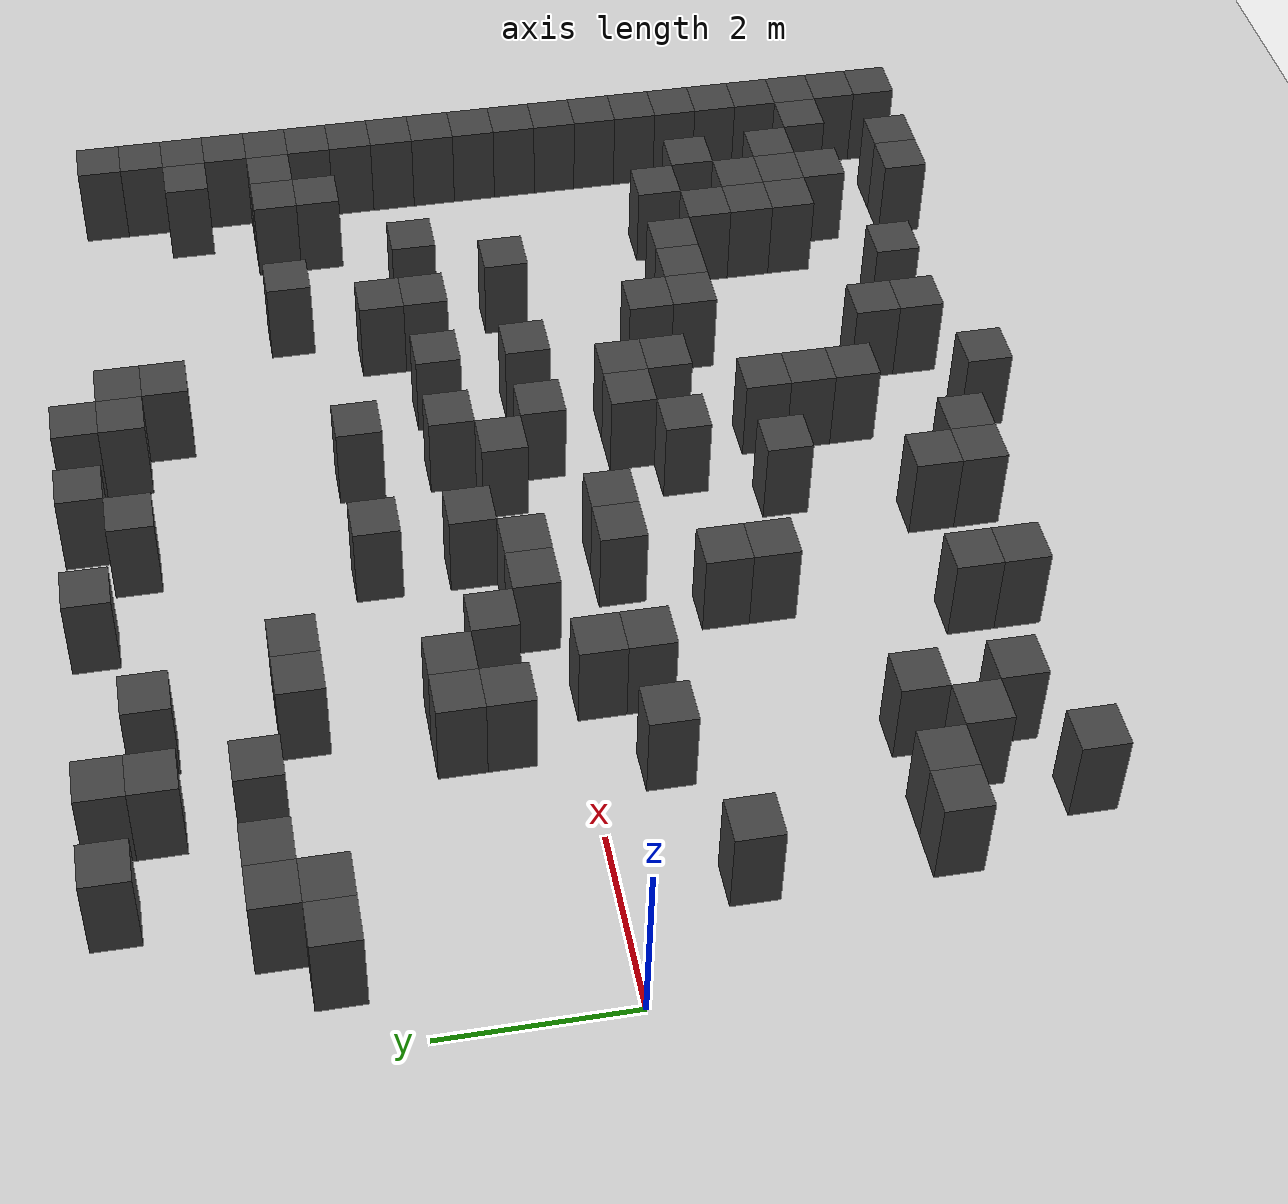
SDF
<sdf version="1.7">
 <world name="map_4009">
  <model name="ground_plane">
   <static>true</static>
   <link name="link">
    <collision name="collision">
     <geometry><plane><normal>0 0 1</normal><size>200 200</size></plane></geometry>
    </collision>
    <visual name="visual">
     <geometry><plane><normal>0 0 1</normal><size>200 200</size></plane></geometry>
     <material><ambient>0.8 0.8 0.8 1</ambient><diffuse>0.8 0.8 0.8 1</diffuse></material>
    </visual>
   </link>
  </model>
  <model name="maze_environment">
   <static>true</static>
   <link name="wall_213">
    <pose>1.750 4.750 0.500 0 0 0</pose>
    <collision name="col"><geometry><box><size>0.5 0.5 1.0</size></box></geometry></collision>
    <visual name="vis">
     <geometry><box><size>0.5 0.5 1.0</size></box></geometry>
     <material><ambient>0.15 0.15 0.15 1</ambient><diffuse>0.25 0.25 0.25 1</diffuse></material>
    </visual>
   </link>
   <link name="wall_214">
    <pose>2.750 4.750 0.500 0 0 0</pose>
    <collision name="col"><geometry><box><size>0.5 0.5 1.0</size></box></geometry></collision>
    <visual name="vis">
     <geometry><box><size>0.5 0.5 1.0</size></box></geometry>
     <material><ambient>0.15 0.15 0.15 1</ambient><diffuse>0.25 0.25 0.25 1</diffuse></material>
    </visual>
   </link>
   <link name="wall_215">
    <pose>5.250 4.750 0.500 0 0 0</pose>
    <collision name="col"><geometry><box><size>0.5 0.5 1.0</size></box></geometry></collision>
    <visual name="vis">
     <geometry><box><size>0.5 0.5 1.0</size></box></geometry>
     <material><ambient>0.15 0.15 0.15 1</ambient><diffuse>0.25 0.25 0.25 1</diffuse></material>
    </visual>
   </link>
   <link name="wall_216">
    <pose>6.750 4.750 0.500 0 0 0</pose>
    <collision name="col"><geometry><box><size>0.5 0.5 1.0</size></box></geometry></collision>
    <visual name="vis">
     <geometry><box><size>0.5 0.5 1.0</size></box></geometry>
     <material><ambient>0.15 0.15 0.15 1</ambient><diffuse>0.25 0.25 0.25 1</diffuse></material>
    </visual>
   </link>
   <link name="wall_217">
    <pose>7.750 4.750 0.500 0 0 0</pose>
    <collision name="col"><geometry><box><size>0.5 0.5 1.0</size></box></geometry></collision>
    <visual name="vis">
     <geometry><box><size>0.5 0.5 1.0</size></box></geometry>
     <material><ambient>0.15 0.15 0.15 1</ambient><diffuse>0.25 0.25 0.25 1</diffuse></material>
    </visual>
   </link>
   <link name="wall_230">
    <pose>2.750 4.250 0.500 0 0 0</pose>
    <collision name="col"><geometry><box><size>0.5 0.5 1.0</size></box></geometry></collision>
    <visual name="vis">
     <geometry><box><size>0.5 0.5 1.0</size></box></geometry>
     <material><ambient>0.15 0.15 0.15 1</ambient><diffuse>0.25 0.25 0.25 1</diffuse></material>
    </visual>
   </link>
   <link name="wall_231">
    <pose>3.750 4.250 0.500 0 0 0</pose>
    <collision name="col"><geometry><box><size>0.5 0.5 1.0</size></box></geometry></collision>
    <visual name="vis">
     <geometry><box><size>0.5 0.5 1.0</size></box></geometry>
     <material><ambient>0.15 0.15 0.15 1</ambient><diffuse>0.25 0.25 0.25 1</diffuse></material>
    </visual>
   </link>
   <link name="wall_232">
    <pose>6.250 4.250 0.500 0 0 0</pose>
    <collision name="col"><geometry><box><size>0.5 0.5 1.0</size></box></geometry></collision>
    <visual name="vis">
     <geometry><box><size>0.5 0.5 1.0</size></box></geometry>
     <material><ambient>0.15 0.15 0.15 1</ambient><diffuse>0.25 0.25 0.25 1</diffuse></material>
    </visual>
   </link>
   <link name="wall_233">
    <pose>7.750 4.250 0.500 0 0 0</pose>
    <collision name="col"><geometry><box><size>0.5 0.5 1.0</size></box></geometry></collision>
    <visual name="vis">
     <geometry><box><size>0.5 0.5 1.0</size></box></geometry>
     <material><ambient>0.15 0.15 0.15 1</ambient><diffuse>0.25 0.25 0.25 1</diffuse></material>
    </visual>
   </link>
   <link name="wall_234">
    <pose>8.250 4.250 0.500 0 0 0</pose>
    <collision name="col"><geometry><box><size>0.5 0.5 1.0</size></box></geometry></collision>
    <visual name="vis">
     <geometry><box><size>0.5 0.5 1.0</size></box></geometry>
     <material><ambient>0.15 0.15 0.15 1</ambient><diffuse>0.25 0.25 0.25 1</diffuse></material>
    </visual>
   </link>
   <link name="wall_235">
    <pose>12.250 4.250 0.500 0 0 0</pose>
    <collision name="col"><geometry><box><size>0.5 0.5 1.0</size></box></geometry></collision>
    <visual name="vis">
     <geometry><box><size>0.5 0.5 1.0</size></box></geometry>
     <material><ambient>0.15 0.15 0.15 1</ambient><diffuse>0.25 0.25 0.25 1</diffuse></material>
    </visual>
   </link>
   <link name="wall_243">
    <pose>8.250 3.750 0.500 0 0 0</pose>
    <collision name="col"><geometry><box><size>0.5 0.5 1.0</size></box></geometry></collision>
    <visual name="vis">
     <geometry><box><size>0.5 0.5 1.0</size></box></geometry>
     <material><ambient>0.15 0.15 0.15 1</ambient><diffuse>0.25 0.25 0.25 1</diffuse></material>
    </visual>
   </link>
   <link name="wall_244">
    <pose>12.250 3.750 0.500 0 0 0</pose>
    <collision name="col"><geometry><box><size>0.5 0.5 1.0</size></box></geometry></collision>
    <visual name="vis">
     <geometry><box><size>0.5 0.5 1.0</size></box></geometry>
     <material><ambient>0.15 0.15 0.15 1</ambient><diffuse>0.25 0.25 0.25 1</diffuse></material>
    </visual>
   </link>
   <link name="wall_253">
    <pose>1.250 3.250 0.500 0 0 0</pose>
    <collision name="col"><geometry><box><size>0.5 0.5 1.0</size></box></geometry></collision>
    <visual name="vis">
     <geometry><box><size>0.5 0.5 1.0</size></box></geometry>
     <material><ambient>0.15 0.15 0.15 1</ambient><diffuse>0.25 0.25 0.25 1</diffuse></material>
    </visual>
   </link>
   <link name="wall_254">
    <pose>1.750 3.250 0.500 0 0 0</pose>
    <collision name="col"><geometry><box><size>0.5 0.5 1.0</size></box></geometry></collision>
    <visual name="vis">
     <geometry><box><size>0.5 0.5 1.0</size></box></geometry>
     <material><ambient>0.15 0.15 0.15 1</ambient><diffuse>0.25 0.25 0.25 1</diffuse></material>
    </visual>
   </link>
   <link name="wall_255">
    <pose>2.750 3.250 0.500 0 0 0</pose>
    <collision name="col"><geometry><box><size>0.5 0.5 1.0</size></box></geometry></collision>
    <visual name="vis">
     <geometry><box><size>0.5 0.5 1.0</size></box></geometry>
     <material><ambient>0.15 0.15 0.15 1</ambient><diffuse>0.25 0.25 0.25 1</diffuse></material>
    </visual>
   </link>
   <link name="wall_256">
    <pose>11.750 3.250 0.500 0 0 0</pose>
    <collision name="col"><geometry><box><size>0.5 0.5 1.0</size></box></geometry></collision>
    <visual name="vis">
     <geometry><box><size>0.5 0.5 1.0</size></box></geometry>
     <material><ambient>0.15 0.15 0.15 1</ambient><diffuse>0.25 0.25 0.25 1</diffuse></material>
    </visual>
   </link>
   <link name="wall_257">
    <pose>12.250 3.250 0.500 0 0 0</pose>
    <collision name="col"><geometry><box><size>0.5 0.5 1.0</size></box></geometry></collision>
    <visual name="vis">
     <geometry><box><size>0.5 0.5 1.0</size></box></geometry>
     <material><ambient>0.15 0.15 0.15 1</ambient><diffuse>0.25 0.25 0.25 1</diffuse></material>
    </visual>
   </link>
   <link name="wall_266">
    <pose>0.750 2.750 0.500 0 0 0</pose>
    <collision name="col"><geometry><box><size>0.5 0.5 1.0</size></box></geometry></collision>
    <visual name="vis">
     <geometry><box><size>0.5 0.5 1.0</size></box></geometry>
     <material><ambient>0.15 0.15 0.15 1</ambient><diffuse>0.25 0.25 0.25 1</diffuse></material>
    </visual>
   </link>
   <link name="wall_267">
    <pose>1.250 2.750 0.500 0 0 0</pose>
    <collision name="col"><geometry><box><size>0.5 0.5 1.0</size></box></geometry></collision>
    <visual name="vis">
     <geometry><box><size>0.5 0.5 1.0</size></box></geometry>
     <material><ambient>0.15 0.15 0.15 1</ambient><diffuse>0.25 0.25 0.25 1</diffuse></material>
    </visual>
   </link>
   <link name="wall_268">
    <pose>3.750 2.750 0.500 0 0 0</pose>
    <collision name="col"><geometry><box><size>0.5 0.5 1.0</size></box></geometry></collision>
    <visual name="vis">
     <geometry><box><size>0.5 0.5 1.0</size></box></geometry>
     <material><ambient>0.15 0.15 0.15 1</ambient><diffuse>0.25 0.25 0.25 1</diffuse></material>
    </visual>
   </link>
   <link name="wall_269">
    <pose>4.250 2.750 0.500 0 0 0</pose>
    <collision name="col"><geometry><box><size>0.5 0.5 1.0</size></box></geometry></collision>
    <visual name="vis">
     <geometry><box><size>0.5 0.5 1.0</size></box></geometry>
     <material><ambient>0.15 0.15 0.15 1</ambient><diffuse>0.25 0.25 0.25 1</diffuse></material>
    </visual>
   </link>
   <link name="wall_270">
    <pose>12.250 2.750 0.500 0 0 0</pose>
    <collision name="col"><geometry><box><size>0.5 0.5 1.0</size></box></geometry></collision>
    <visual name="vis">
     <geometry><box><size>0.5 0.5 1.0</size></box></geometry>
     <material><ambient>0.15 0.15 0.15 1</ambient><diffuse>0.25 0.25 0.25 1</diffuse></material>
    </visual>
   </link>
   <link name="wall_277">
    <pose>9.750 2.250 0.500 0 0 0</pose>
    <collision name="col"><geometry><box><size>0.5 0.5 1.0</size></box></geometry></collision>
    <visual name="vis">
     <geometry><box><size>0.5 0.5 1.0</size></box></geometry>
     <material><ambient>0.15 0.15 0.15 1</ambient><diffuse>0.25 0.25 0.25 1</diffuse></material>
    </visual>
   </link>
   <link name="wall_278">
    <pose>11.250 2.250 0.500 0 0 0</pose>
    <collision name="col"><geometry><box><size>0.5 0.5 1.0</size></box></geometry></collision>
    <visual name="vis">
     <geometry><box><size>0.5 0.5 1.0</size></box></geometry>
     <material><ambient>0.15 0.15 0.15 1</ambient><diffuse>0.25 0.25 0.25 1</diffuse></material>
    </visual>
   </link>
   <link name="wall_279">
    <pose>11.750 2.250 0.500 0 0 0</pose>
    <collision name="col"><geometry><box><size>0.5 0.5 1.0</size></box></geometry></collision>
    <visual name="vis">
     <geometry><box><size>0.5 0.5 1.0</size></box></geometry>
     <material><ambient>0.15 0.15 0.15 1</ambient><diffuse>0.25 0.25 0.25 1</diffuse></material>
    </visual>
   </link>
   <link name="wall_280">
    <pose>12.250 2.250 0.500 0 0 0</pose>
    <collision name="col"><geometry><box><size>0.5 0.5 1.0</size></box></geometry></collision>
    <visual name="vis">
     <geometry><box><size>0.5 0.5 1.0</size></box></geometry>
     <material><ambient>0.15 0.15 0.15 1</ambient><diffuse>0.25 0.25 0.25 1</diffuse></material>
    </visual>
   </link>
   <link name="wall_286">
    <pose>5.750 1.750 0.500 0 0 0</pose>
    <collision name="col"><geometry><box><size>0.5 0.5 1.0</size></box></geometry></collision>
    <visual name="vis">
     <geometry><box><size>0.5 0.5 1.0</size></box></geometry>
     <material><ambient>0.15 0.15 0.15 1</ambient><diffuse>0.25 0.25 0.25 1</diffuse></material>
    </visual>
   </link>
   <link name="wall_287">
    <pose>7.250 1.750 0.500 0 0 0</pose>
    <collision name="col"><geometry><box><size>0.5 0.5 1.0</size></box></geometry></collision>
    <visual name="vis">
     <geometry><box><size>0.5 0.5 1.0</size></box></geometry>
     <material><ambient>0.15 0.15 0.15 1</ambient><diffuse>0.25 0.25 0.25 1</diffuse></material>
    </visual>
   </link>
   <link name="wall_288">
    <pose>11.250 1.750 0.500 0 0 0</pose>
    <collision name="col"><geometry><box><size>0.5 0.5 1.0</size></box></geometry></collision>
    <visual name="vis">
     <geometry><box><size>0.5 0.5 1.0</size></box></geometry>
     <material><ambient>0.15 0.15 0.15 1</ambient><diffuse>0.25 0.25 0.25 1</diffuse></material>
    </visual>
   </link>
   <link name="wall_289">
    <pose>12.250 1.750 0.500 0 0 0</pose>
    <collision name="col"><geometry><box><size>0.5 0.5 1.0</size></box></geometry></collision>
    <visual name="vis">
     <geometry><box><size>0.5 0.5 1.0</size></box></geometry>
     <material><ambient>0.15 0.15 0.15 1</ambient><diffuse>0.25 0.25 0.25 1</diffuse></material>
    </visual>
   </link>
   <link name="wall_295">
    <pose>3.250 1.250 0.500 0 0 0</pose>
    <collision name="col"><geometry><box><size>0.5 0.5 1.0</size></box></geometry></collision>
    <visual name="vis">
     <geometry><box><size>0.5 0.5 1.0</size></box></geometry>
     <material><ambient>0.15 0.15 0.15 1</ambient><diffuse>0.25 0.25 0.25 1</diffuse></material>
    </visual>
   </link>
   <link name="wall_296">
    <pose>3.750 1.250 0.500 0 0 0</pose>
    <collision name="col"><geometry><box><size>0.5 0.5 1.0</size></box></geometry></collision>
    <visual name="vis">
     <geometry><box><size>0.5 0.5 1.0</size></box></geometry>
     <material><ambient>0.15 0.15 0.15 1</ambient><diffuse>0.25 0.25 0.25 1</diffuse></material>
    </visual>
   </link>
   <link name="wall_297">
    <pose>9.250 1.250 0.500 0 0 0</pose>
    <collision name="col"><geometry><box><size>0.5 0.5 1.0</size></box></geometry></collision>
    <visual name="vis">
     <geometry><box><size>0.5 0.5 1.0</size></box></geometry>
     <material><ambient>0.15 0.15 0.15 1</ambient><diffuse>0.25 0.25 0.25 1</diffuse></material>
    </visual>
   </link>
   <link name="wall_298">
    <pose>12.250 1.250 0.500 0 0 0</pose>
    <collision name="col"><geometry><box><size>0.5 0.5 1.0</size></box></geometry></collision>
    <visual name="vis">
     <geometry><box><size>0.5 0.5 1.0</size></box></geometry>
     <material><ambient>0.15 0.15 0.15 1</ambient><diffuse>0.25 0.25 0.25 1</diffuse></material>
    </visual>
   </link>
   <link name="wall_306">
    <pose>3.250 0.750 0.500 0 0 0</pose>
    <collision name="col"><geometry><box><size>0.5 0.5 1.0</size></box></geometry></collision>
    <visual name="vis">
     <geometry><box><size>0.5 0.5 1.0</size></box></geometry>
     <material><ambient>0.15 0.15 0.15 1</ambient><diffuse>0.25 0.25 0.25 1</diffuse></material>
    </visual>
   </link>
   <link name="wall_307">
    <pose>4.250 0.750 0.500 0 0 0</pose>
    <collision name="col"><geometry><box><size>0.5 0.5 1.0</size></box></geometry></collision>
    <visual name="vis">
     <geometry><box><size>0.5 0.5 1.0</size></box></geometry>
     <material><ambient>0.15 0.15 0.15 1</ambient><diffuse>0.25 0.25 0.25 1</diffuse></material>
    </visual>
   </link>
   <link name="wall_308">
    <pose>5.750 0.750 0.500 0 0 0</pose>
    <collision name="col"><geometry><box><size>0.5 0.5 1.0</size></box></geometry></collision>
    <visual name="vis">
     <geometry><box><size>0.5 0.5 1.0</size></box></geometry>
     <material><ambient>0.15 0.15 0.15 1</ambient><diffuse>0.25 0.25 0.25 1</diffuse></material>
    </visual>
   </link>
   <link name="wall_309">
    <pose>7.250 0.750 0.500 0 0 0</pose>
    <collision name="col"><geometry><box><size>0.5 0.5 1.0</size></box></geometry></collision>
    <visual name="vis">
     <geometry><box><size>0.5 0.5 1.0</size></box></geometry>
     <material><ambient>0.15 0.15 0.15 1</ambient><diffuse>0.25 0.25 0.25 1</diffuse></material>
    </visual>
   </link>
   <link name="wall_310">
    <pose>8.250 0.750 0.500 0 0 0</pose>
    <collision name="col"><geometry><box><size>0.5 0.5 1.0</size></box></geometry></collision>
    <visual name="vis">
     <geometry><box><size>0.5 0.5 1.0</size></box></geometry>
     <material><ambient>0.15 0.15 0.15 1</ambient><diffuse>0.25 0.25 0.25 1</diffuse></material>
    </visual>
   </link>
   <link name="wall_311">
    <pose>9.250 0.750 0.500 0 0 0</pose>
    <collision name="col"><geometry><box><size>0.5 0.5 1.0</size></box></geometry></collision>
    <visual name="vis">
     <geometry><box><size>0.5 0.5 1.0</size></box></geometry>
     <material><ambient>0.15 0.15 0.15 1</ambient><diffuse>0.25 0.25 0.25 1</diffuse></material>
    </visual>
   </link>
   <link name="wall_312">
    <pose>10.250 0.750 0.500 0 0 0</pose>
    <collision name="col"><geometry><box><size>0.5 0.5 1.0</size></box></geometry></collision>
    <visual name="vis">
     <geometry><box><size>0.5 0.5 1.0</size></box></geometry>
     <material><ambient>0.15 0.15 0.15 1</ambient><diffuse>0.25 0.25 0.25 1</diffuse></material>
    </visual>
   </link>
   <link name="wall_313">
    <pose>12.250 0.750 0.500 0 0 0</pose>
    <collision name="col"><geometry><box><size>0.5 0.5 1.0</size></box></geometry></collision>
    <visual name="vis">
     <geometry><box><size>0.5 0.5 1.0</size></box></geometry>
     <material><ambient>0.15 0.15 0.15 1</ambient><diffuse>0.25 0.25 0.25 1</diffuse></material>
    </visual>
   </link>
   <link name="wall_318">
    <pose>4.750 0.250 0.500 0 0 0</pose>
    <collision name="col"><geometry><box><size>0.5 0.5 1.0</size></box></geometry></collision>
    <visual name="vis">
     <geometry><box><size>0.5 0.5 1.0</size></box></geometry>
     <material><ambient>0.15 0.15 0.15 1</ambient><diffuse>0.25 0.25 0.25 1</diffuse></material>
    </visual>
   </link>
   <link name="wall_319">
    <pose>5.250 0.250 0.500 0 0 0</pose>
    <collision name="col"><geometry><box><size>0.5 0.5 1.0</size></box></geometry></collision>
    <visual name="vis">
     <geometry><box><size>0.5 0.5 1.0</size></box></geometry>
     <material><ambient>0.15 0.15 0.15 1</ambient><diffuse>0.25 0.25 0.25 1</diffuse></material>
    </visual>
   </link>
   <link name="wall_320">
    <pose>6.750 0.250 0.500 0 0 0</pose>
    <collision name="col"><geometry><box><size>0.5 0.5 1.0</size></box></geometry></collision>
    <visual name="vis">
     <geometry><box><size>0.5 0.5 1.0</size></box></geometry>
     <material><ambient>0.15 0.15 0.15 1</ambient><diffuse>0.25 0.25 0.25 1</diffuse></material>
    </visual>
   </link>
   <link name="wall_321">
    <pose>12.250 0.250 0.500 0 0 0</pose>
    <collision name="col"><geometry><box><size>0.5 0.5 1.0</size></box></geometry></collision>
    <visual name="vis">
     <geometry><box><size>0.5 0.5 1.0</size></box></geometry>
     <material><ambient>0.15 0.15 0.15 1</ambient><diffuse>0.25 0.25 0.25 1</diffuse></material>
    </visual>
   </link>
   <link name="wall_326">
    <pose>3.750 -0.250 0.500 0 0 0</pose>
    <collision name="col"><geometry><box><size>0.5 0.5 1.0</size></box></geometry></collision>
    <visual name="vis">
     <geometry><box><size>0.5 0.5 1.0</size></box></geometry>
     <material><ambient>0.15 0.15 0.15 1</ambient><diffuse>0.25 0.25 0.25 1</diffuse></material>
    </visual>
   </link>
   <link name="wall_327">
    <pose>7.250 -0.250 0.500 0 0 0</pose>
    <collision name="col"><geometry><box><size>0.5 0.5 1.0</size></box></geometry></collision>
    <visual name="vis">
     <geometry><box><size>0.5 0.5 1.0</size></box></geometry>
     <material><ambient>0.15 0.15 0.15 1</ambient><diffuse>0.25 0.25 0.25 1</diffuse></material>
    </visual>
   </link>
   <link name="wall_328">
    <pose>8.250 -0.250 0.500 0 0 0</pose>
    <collision name="col"><geometry><box><size>0.5 0.5 1.0</size></box></geometry></collision>
    <visual name="vis">
     <geometry><box><size>0.5 0.5 1.0</size></box></geometry>
     <material><ambient>0.15 0.15 0.15 1</ambient><diffuse>0.25 0.25 0.25 1</diffuse></material>
    </visual>
   </link>
   <link name="wall_329">
    <pose>9.750 -0.250 0.500 0 0 0</pose>
    <collision name="col"><geometry><box><size>0.5 0.5 1.0</size></box></geometry></collision>
    <visual name="vis">
     <geometry><box><size>0.5 0.5 1.0</size></box></geometry>
     <material><ambient>0.15 0.15 0.15 1</ambient><diffuse>0.25 0.25 0.25 1</diffuse></material>
    </visual>
   </link>
   <link name="wall_330">
    <pose>12.250 -0.250 0.500 0 0 0</pose>
    <collision name="col"><geometry><box><size>0.5 0.5 1.0</size></box></geometry></collision>
    <visual name="vis">
     <geometry><box><size>0.5 0.5 1.0</size></box></geometry>
     <material><ambient>0.15 0.15 0.15 1</ambient><diffuse>0.25 0.25 0.25 1</diffuse></material>
    </visual>
   </link>
   <link name="wall_338">
    <pose>2.750 -0.750 0.500 0 0 0</pose>
    <collision name="col"><geometry><box><size>0.5 0.5 1.0</size></box></geometry></collision>
    <visual name="vis">
     <geometry><box><size>0.5 0.5 1.0</size></box></geometry>
     <material><ambient>0.15 0.15 0.15 1</ambient><diffuse>0.25 0.25 0.25 1</diffuse></material>
    </visual>
   </link>
   <link name="wall_339">
    <pose>3.750 -0.750 0.500 0 0 0</pose>
    <collision name="col"><geometry><box><size>0.5 0.5 1.0</size></box></geometry></collision>
    <visual name="vis">
     <geometry><box><size>0.5 0.5 1.0</size></box></geometry>
     <material><ambient>0.15 0.15 0.15 1</ambient><diffuse>0.25 0.25 0.25 1</diffuse></material>
    </visual>
   </link>
   <link name="wall_340">
    <pose>5.250 -0.750 0.500 0 0 0</pose>
    <collision name="col"><geometry><box><size>0.5 0.5 1.0</size></box></geometry></collision>
    <visual name="vis">
     <geometry><box><size>0.5 0.5 1.0</size></box></geometry>
     <material><ambient>0.15 0.15 0.15 1</ambient><diffuse>0.25 0.25 0.25 1</diffuse></material>
    </visual>
   </link>
   <link name="wall_341">
    <pose>5.750 -0.750 0.500 0 0 0</pose>
    <collision name="col"><geometry><box><size>0.5 0.5 1.0</size></box></geometry></collision>
    <visual name="vis">
     <geometry><box><size>0.5 0.5 1.0</size></box></geometry>
     <material><ambient>0.15 0.15 0.15 1</ambient><diffuse>0.25 0.25 0.25 1</diffuse></material>
    </visual>
   </link>
   <link name="wall_342">
    <pose>12.250 -0.750 0.500 0 0 0</pose>
    <collision name="col"><geometry><box><size>0.5 0.5 1.0</size></box></geometry></collision>
    <visual name="vis">
     <geometry><box><size>0.5 0.5 1.0</size></box></geometry>
     <material><ambient>0.15 0.15 0.15 1</ambient><diffuse>0.25 0.25 0.25 1</diffuse></material>
    </visual>
   </link>
   <link name="wall_352">
    <pose>1.250 -1.250 0.500 0 0 0</pose>
    <collision name="col"><geometry><box><size>0.5 0.5 1.0</size></box></geometry></collision>
    <visual name="vis">
     <geometry><box><size>0.5 0.5 1.0</size></box></geometry>
     <material><ambient>0.15 0.15 0.15 1</ambient><diffuse>0.25 0.25 0.25 1</diffuse></material>
    </visual>
   </link>
   <link name="wall_353">
    <pose>7.250 -1.250 0.500 0 0 0</pose>
    <collision name="col"><geometry><box><size>0.5 0.5 1.0</size></box></geometry></collision>
    <visual name="vis">
     <geometry><box><size>0.5 0.5 1.0</size></box></geometry>
     <material><ambient>0.15 0.15 0.15 1</ambient><diffuse>0.25 0.25 0.25 1</diffuse></material>
    </visual>
   </link>
   <link name="wall_354">
    <pose>7.750 -1.250 0.500 0 0 0</pose>
    <collision name="col"><geometry><box><size>0.5 0.5 1.0</size></box></geometry></collision>
    <visual name="vis">
     <geometry><box><size>0.5 0.5 1.0</size></box></geometry>
     <material><ambient>0.15 0.15 0.15 1</ambient><diffuse>0.25 0.25 0.25 1</diffuse></material>
    </visual>
   </link>
   <link name="wall_355">
    <pose>12.250 -1.250 0.500 0 0 0</pose>
    <collision name="col"><geometry><box><size>0.5 0.5 1.0</size></box></geometry></collision>
    <visual name="vis">
     <geometry><box><size>0.5 0.5 1.0</size></box></geometry>
     <material><ambient>0.15 0.15 0.15 1</ambient><diffuse>0.25 0.25 0.25 1</diffuse></material>
    </visual>
   </link>
   <link name="wall_362">
    <pose>4.750 -1.750 0.500 0 0 0</pose>
    <collision name="col"><geometry><box><size>0.5 0.5 1.0</size></box></geometry></collision>
    <visual name="vis">
     <geometry><box><size>0.5 0.5 1.0</size></box></geometry>
     <material><ambient>0.15 0.15 0.15 1</ambient><diffuse>0.25 0.25 0.25 1</diffuse></material>
    </visual>
   </link>
   <link name="wall_363">
    <pose>6.750 -1.750 0.500 0 0 0</pose>
    <collision name="col"><geometry><box><size>0.5 0.5 1.0</size></box></geometry></collision>
    <visual name="vis">
     <geometry><box><size>0.5 0.5 1.0</size></box></geometry>
     <material><ambient>0.15 0.15 0.15 1</ambient><diffuse>0.25 0.25 0.25 1</diffuse></material>
    </visual>
   </link>
   <link name="wall_364">
    <pose>7.750 -1.750 0.500 0 0 0</pose>
    <collision name="col"><geometry><box><size>0.5 0.5 1.0</size></box></geometry></collision>
    <visual name="vis">
     <geometry><box><size>0.5 0.5 1.0</size></box></geometry>
     <material><ambient>0.15 0.15 0.15 1</ambient><diffuse>0.25 0.25 0.25 1</diffuse></material>
    </visual>
   </link>
   <link name="wall_365">
    <pose>8.750 -1.750 0.500 0 0 0</pose>
    <collision name="col"><geometry><box><size>0.5 0.5 1.0</size></box></geometry></collision>
    <visual name="vis">
     <geometry><box><size>0.5 0.5 1.0</size></box></geometry>
     <material><ambient>0.15 0.15 0.15 1</ambient><diffuse>0.25 0.25 0.25 1</diffuse></material>
    </visual>
   </link>
   <link name="wall_366">
    <pose>12.250 -1.750 0.500 0 0 0</pose>
    <collision name="col"><geometry><box><size>0.5 0.5 1.0</size></box></geometry></collision>
    <visual name="vis">
     <geometry><box><size>0.5 0.5 1.0</size></box></geometry>
     <material><ambient>0.15 0.15 0.15 1</ambient><diffuse>0.25 0.25 0.25 1</diffuse></material>
    </visual>
   </link>
   <link name="wall_371">
    <pose>4.750 -2.250 0.500 0 0 0</pose>
    <collision name="col"><geometry><box><size>0.5 0.5 1.0</size></box></geometry></collision>
    <visual name="vis">
     <geometry><box><size>0.5 0.5 1.0</size></box></geometry>
     <material><ambient>0.15 0.15 0.15 1</ambient><diffuse>0.25 0.25 0.25 1</diffuse></material>
    </visual>
   </link>
   <link name="wall_372">
    <pose>8.750 -2.250 0.500 0 0 0</pose>
    <collision name="col"><geometry><box><size>0.5 0.5 1.0</size></box></geometry></collision>
    <visual name="vis">
     <geometry><box><size>0.5 0.5 1.0</size></box></geometry>
     <material><ambient>0.15 0.15 0.15 1</ambient><diffuse>0.25 0.25 0.25 1</diffuse></material>
    </visual>
   </link>
   <link name="wall_373">
    <pose>9.250 -2.250 0.500 0 0 0</pose>
    <collision name="col"><geometry><box><size>0.5 0.5 1.0</size></box></geometry></collision>
    <visual name="vis">
     <geometry><box><size>0.5 0.5 1.0</size></box></geometry>
     <material><ambient>0.15 0.15 0.15 1</ambient><diffuse>0.25 0.25 0.25 1</diffuse></material>
    </visual>
   </link>
   <link name="wall_374">
    <pose>9.750 -2.250 0.500 0 0 0</pose>
    <collision name="col"><geometry><box><size>0.5 0.5 1.0</size></box></geometry></collision>
    <visual name="vis">
     <geometry><box><size>0.5 0.5 1.0</size></box></geometry>
     <material><ambient>0.15 0.15 0.15 1</ambient><diffuse>0.25 0.25 0.25 1</diffuse></material>
    </visual>
   </link>
   <link name="wall_375">
    <pose>10.750 -2.250 0.500 0 0 0</pose>
    <collision name="col"><geometry><box><size>0.5 0.5 1.0</size></box></geometry></collision>
    <visual name="vis">
     <geometry><box><size>0.5 0.5 1.0</size></box></geometry>
     <material><ambient>0.15 0.15 0.15 1</ambient><diffuse>0.25 0.25 0.25 1</diffuse></material>
    </visual>
   </link>
   <link name="wall_376">
    <pose>12.250 -2.250 0.500 0 0 0</pose>
    <collision name="col"><geometry><box><size>0.5 0.5 1.0</size></box></geometry></collision>
    <visual name="vis">
     <geometry><box><size>0.5 0.5 1.0</size></box></geometry>
     <material><ambient>0.15 0.15 0.15 1</ambient><diffuse>0.25 0.25 0.25 1</diffuse></material>
    </visual>
   </link>
   <link name="wall_381">
    <pose>6.250 -2.750 0.500 0 0 0</pose>
    <collision name="col"><geometry><box><size>0.5 0.5 1.0</size></box></geometry></collision>
    <visual name="vis">
     <geometry><box><size>0.5 0.5 1.0</size></box></geometry>
     <material><ambient>0.15 0.15 0.15 1</ambient><diffuse>0.25 0.25 0.25 1</diffuse></material>
    </visual>
   </link>
   <link name="wall_382">
    <pose>7.250 -2.750 0.500 0 0 0</pose>
    <collision name="col"><geometry><box><size>0.5 0.5 1.0</size></box></geometry></collision>
    <visual name="vis">
     <geometry><box><size>0.5 0.5 1.0</size></box></geometry>
     <material><ambient>0.15 0.15 0.15 1</ambient><diffuse>0.25 0.25 0.25 1</diffuse></material>
    </visual>
   </link>
   <link name="wall_383">
    <pose>10.250 -2.750 0.500 0 0 0</pose>
    <collision name="col"><geometry><box><size>0.5 0.5 1.0</size></box></geometry></collision>
    <visual name="vis">
     <geometry><box><size>0.5 0.5 1.0</size></box></geometry>
     <material><ambient>0.15 0.15 0.15 1</ambient><diffuse>0.25 0.25 0.25 1</diffuse></material>
    </visual>
   </link>
   <link name="wall_384">
    <pose>11.250 -2.750 0.500 0 0 0</pose>
    <collision name="col"><geometry><box><size>0.5 0.5 1.0</size></box></geometry></collision>
    <visual name="vis">
     <geometry><box><size>0.5 0.5 1.0</size></box></geometry>
     <material><ambient>0.15 0.15 0.15 1</ambient><diffuse>0.25 0.25 0.25 1</diffuse></material>
    </visual>
   </link>
   <link name="wall_385">
    <pose>12.250 -2.750 0.500 0 0 0</pose>
    <collision name="col"><geometry><box><size>0.5 0.5 1.0</size></box></geometry></collision>
    <visual name="vis">
     <geometry><box><size>0.5 0.5 1.0</size></box></geometry>
     <material><ambient>0.15 0.15 0.15 1</ambient><diffuse>0.25 0.25 0.25 1</diffuse></material>
    </visual>
   </link>
   <link name="wall_388">
    <pose>1.250 -3.250 0.500 0 0 0</pose>
    <collision name="col"><geometry><box><size>0.5 0.5 1.0</size></box></geometry></collision>
    <visual name="vis">
     <geometry><box><size>0.5 0.5 1.0</size></box></geometry>
     <material><ambient>0.15 0.15 0.15 1</ambient><diffuse>0.25 0.25 0.25 1</diffuse></material>
    </visual>
   </link>
   <link name="wall_389">
    <pose>1.750 -3.250 0.500 0 0 0</pose>
    <collision name="col"><geometry><box><size>0.5 0.5 1.0</size></box></geometry></collision>
    <visual name="vis">
     <geometry><box><size>0.5 0.5 1.0</size></box></geometry>
     <material><ambient>0.15 0.15 0.15 1</ambient><diffuse>0.25 0.25 0.25 1</diffuse></material>
    </visual>
   </link>
   <link name="wall_390">
    <pose>2.750 -3.250 0.500 0 0 0</pose>
    <collision name="col"><geometry><box><size>0.5 0.5 1.0</size></box></geometry></collision>
    <visual name="vis">
     <geometry><box><size>0.5 0.5 1.0</size></box></geometry>
     <material><ambient>0.15 0.15 0.15 1</ambient><diffuse>0.25 0.25 0.25 1</diffuse></material>
    </visual>
   </link>
   <link name="wall_391">
    <pose>7.250 -3.250 0.500 0 0 0</pose>
    <collision name="col"><geometry><box><size>0.5 0.5 1.0</size></box></geometry></collision>
    <visual name="vis">
     <geometry><box><size>0.5 0.5 1.0</size></box></geometry>
     <material><ambient>0.15 0.15 0.15 1</ambient><diffuse>0.25 0.25 0.25 1</diffuse></material>
    </visual>
   </link>
   <link name="wall_392">
    <pose>10.250 -3.250 0.500 0 0 0</pose>
    <collision name="col"><geometry><box><size>0.5 0.5 1.0</size></box></geometry></collision>
    <visual name="vis">
     <geometry><box><size>0.5 0.5 1.0</size></box></geometry>
     <material><ambient>0.15 0.15 0.15 1</ambient><diffuse>0.25 0.25 0.25 1</diffuse></material>
    </visual>
   </link>
   <link name="wall_393">
    <pose>10.750 -3.250 0.500 0 0 0</pose>
    <collision name="col"><geometry><box><size>0.5 0.5 1.0</size></box></geometry></collision>
    <visual name="vis">
     <geometry><box><size>0.5 0.5 1.0</size></box></geometry>
     <material><ambient>0.15 0.15 0.15 1</ambient><diffuse>0.25 0.25 0.25 1</diffuse></material>
    </visual>
   </link>
   <link name="wall_394">
    <pose>12.250 -3.250 0.500 0 0 0</pose>
    <collision name="col"><geometry><box><size>0.5 0.5 1.0</size></box></geometry></collision>
    <visual name="vis">
     <geometry><box><size>0.5 0.5 1.0</size></box></geometry>
     <material><ambient>0.15 0.15 0.15 1</ambient><diffuse>0.25 0.25 0.25 1</diffuse></material>
    </visual>
   </link>
   <link name="wall_400">
    <pose>2.250 -3.750 0.500 0 0 0</pose>
    <collision name="col"><geometry><box><size>0.5 0.5 1.0</size></box></geometry></collision>
    <visual name="vis">
     <geometry><box><size>0.5 0.5 1.0</size></box></geometry>
     <material><ambient>0.15 0.15 0.15 1</ambient><diffuse>0.25 0.25 0.25 1</diffuse></material>
    </visual>
   </link>
   <link name="wall_401">
    <pose>7.250 -3.750 0.500 0 0 0</pose>
    <collision name="col"><geometry><box><size>0.5 0.5 1.0</size></box></geometry></collision>
    <visual name="vis">
     <geometry><box><size>0.5 0.5 1.0</size></box></geometry>
     <material><ambient>0.15 0.15 0.15 1</ambient><diffuse>0.25 0.25 0.25 1</diffuse></material>
    </visual>
   </link>
   <link name="wall_402">
    <pose>10.250 -3.750 0.500 0 0 0</pose>
    <collision name="col"><geometry><box><size>0.5 0.5 1.0</size></box></geometry></collision>
    <visual name="vis">
     <geometry><box><size>0.5 0.5 1.0</size></box></geometry>
     <material><ambient>0.15 0.15 0.15 1</ambient><diffuse>0.25 0.25 0.25 1</diffuse></material>
    </visual>
   </link>
   <link name="wall_403">
    <pose>10.750 -3.750 0.500 0 0 0</pose>
    <collision name="col"><geometry><box><size>0.5 0.5 1.0</size></box></geometry></collision>
    <visual name="vis">
     <geometry><box><size>0.5 0.5 1.0</size></box></geometry>
     <material><ambient>0.15 0.15 0.15 1</ambient><diffuse>0.25 0.25 0.25 1</diffuse></material>
    </visual>
   </link>
   <link name="wall_404">
    <pose>11.250 -3.750 0.500 0 0 0</pose>
    <collision name="col"><geometry><box><size>0.5 0.5 1.0</size></box></geometry></collision>
    <visual name="vis">
     <geometry><box><size>0.5 0.5 1.0</size></box></geometry>
     <material><ambient>0.15 0.15 0.15 1</ambient><diffuse>0.25 0.25 0.25 1</diffuse></material>
    </visual>
   </link>
   <link name="wall_405">
    <pose>12.250 -3.750 0.500 0 0 0</pose>
    <collision name="col"><geometry><box><size>0.5 0.5 1.0</size></box></geometry></collision>
    <visual name="vis">
     <geometry><box><size>0.5 0.5 1.0</size></box></geometry>
     <material><ambient>0.15 0.15 0.15 1</ambient><diffuse>0.25 0.25 0.25 1</diffuse></material>
    </visual>
   </link>
   <link name="wall_413">
    <pose>2.750 -4.250 0.500 0 0 0</pose>
    <collision name="col"><geometry><box><size>0.5 0.5 1.0</size></box></geometry></collision>
    <visual name="vis">
     <geometry><box><size>0.5 0.5 1.0</size></box></geometry>
     <material><ambient>0.15 0.15 0.15 1</ambient><diffuse>0.25 0.25 0.25 1</diffuse></material>
    </visual>
   </link>
   <link name="wall_414">
    <pose>4.250 -4.250 0.500 0 0 0</pose>
    <collision name="col"><geometry><box><size>0.5 0.5 1.0</size></box></geometry></collision>
    <visual name="vis">
     <geometry><box><size>0.5 0.5 1.0</size></box></geometry>
     <material><ambient>0.15 0.15 0.15 1</ambient><diffuse>0.25 0.25 0.25 1</diffuse></material>
    </visual>
   </link>
   <link name="wall_415">
    <pose>5.750 -4.250 0.500 0 0 0</pose>
    <collision name="col"><geometry><box><size>0.5 0.5 1.0</size></box></geometry></collision>
    <visual name="vis">
     <geometry><box><size>0.5 0.5 1.0</size></box></geometry>
     <material><ambient>0.15 0.15 0.15 1</ambient><diffuse>0.25 0.25 0.25 1</diffuse></material>
    </visual>
   </link>
   <link name="wall_416">
    <pose>8.250 -4.250 0.500 0 0 0</pose>
    <collision name="col"><geometry><box><size>0.5 0.5 1.0</size></box></geometry></collision>
    <visual name="vis">
     <geometry><box><size>0.5 0.5 1.0</size></box></geometry>
     <material><ambient>0.15 0.15 0.15 1</ambient><diffuse>0.25 0.25 0.25 1</diffuse></material>
    </visual>
   </link>
   <link name="wall_417">
    <pose>10.750 -4.250 0.500 0 0 0</pose>
    <collision name="col"><geometry><box><size>0.5 0.5 1.0</size></box></geometry></collision>
    <visual name="vis">
     <geometry><box><size>0.5 0.5 1.0</size></box></geometry>
     <material><ambient>0.15 0.15 0.15 1</ambient><diffuse>0.25 0.25 0.25 1</diffuse></material>
    </visual>
   </link>
   <link name="wall_418">
    <pose>11.750 -4.250 0.500 0 0 0</pose>
    <collision name="col"><geometry><box><size>0.5 0.5 1.0</size></box></geometry></collision>
    <visual name="vis">
     <geometry><box><size>0.5 0.5 1.0</size></box></geometry>
     <material><ambient>0.15 0.15 0.15 1</ambient><diffuse>0.25 0.25 0.25 1</diffuse></material>
    </visual>
   </link>
   <link name="wall_419">
    <pose>12.250 -4.250 0.500 0 0 0</pose>
    <collision name="col"><geometry><box><size>0.5 0.5 1.0</size></box></geometry></collision>
    <visual name="vis">
     <geometry><box><size>0.5 0.5 1.0</size></box></geometry>
     <material><ambient>0.15 0.15 0.15 1</ambient><diffuse>0.25 0.25 0.25 1</diffuse></material>
    </visual>
   </link>
   <link name="wall_428">
    <pose>1.750 -4.750 0.500 0 0 0</pose>
    <collision name="col"><geometry><box><size>0.5 0.5 1.0</size></box></geometry></collision>
    <visual name="vis">
     <geometry><box><size>0.5 0.5 1.0</size></box></geometry>
     <material><ambient>0.15 0.15 0.15 1</ambient><diffuse>0.25 0.25 0.25 1</diffuse></material>
    </visual>
   </link>
   <link name="wall_429">
    <pose>4.250 -4.750 0.500 0 0 0</pose>
    <collision name="col"><geometry><box><size>0.5 0.5 1.0</size></box></geometry></collision>
    <visual name="vis">
     <geometry><box><size>0.5 0.5 1.0</size></box></geometry>
     <material><ambient>0.15 0.15 0.15 1</ambient><diffuse>0.25 0.25 0.25 1</diffuse></material>
    </visual>
   </link>
   <link name="wall_430">
    <pose>5.750 -4.750 0.500 0 0 0</pose>
    <collision name="col"><geometry><box><size>0.5 0.5 1.0</size></box></geometry></collision>
    <visual name="vis">
     <geometry><box><size>0.5 0.5 1.0</size></box></geometry>
     <material><ambient>0.15 0.15 0.15 1</ambient><diffuse>0.25 0.25 0.25 1</diffuse></material>
    </visual>
   </link>
   <link name="wall_431">
    <pose>6.250 -4.750 0.500 0 0 0</pose>
    <collision name="col"><geometry><box><size>0.5 0.5 1.0</size></box></geometry></collision>
    <visual name="vis">
     <geometry><box><size>0.5 0.5 1.0</size></box></geometry>
     <material><ambient>0.15 0.15 0.15 1</ambient><diffuse>0.25 0.25 0.25 1</diffuse></material>
    </visual>
   </link>
   <link name="wall_432">
    <pose>8.250 -4.750 0.500 0 0 0</pose>
    <collision name="col"><geometry><box><size>0.5 0.5 1.0</size></box></geometry></collision>
    <visual name="vis">
     <geometry><box><size>0.5 0.5 1.0</size></box></geometry>
     <material><ambient>0.15 0.15 0.15 1</ambient><diffuse>0.25 0.25 0.25 1</diffuse></material>
    </visual>
   </link>
   <link name="wall_433">
    <pose>9.250 -4.750 0.500 0 0 0</pose>
    <collision name="col"><geometry><box><size>0.5 0.5 1.0</size></box></geometry></collision>
    <visual name="vis">
     <geometry><box><size>0.5 0.5 1.0</size></box></geometry>
     <material><ambient>0.15 0.15 0.15 1</ambient><diffuse>0.25 0.25 0.25 1</diffuse></material>
    </visual>
   </link>
   <link name="wall_434">
    <pose>12.250 -4.750 0.500 0 0 0</pose>
    <collision name="col"><geometry><box><size>0.5 0.5 1.0</size></box></geometry></collision>
    <visual name="vis">
     <geometry><box><size>0.5 0.5 1.0</size></box></geometry>
     <material><ambient>0.15 0.15 0.15 1</ambient><diffuse>0.25 0.25 0.25 1</diffuse></material>
    </visual>
   </link>
   <link name="wall_440">
    <pose>7.250 -5.250 0.500 0 0 0</pose>
    <collision name="col"><geometry><box><size>0.5 0.5 1.0</size></box></geometry></collision>
    <visual name="vis">
     <geometry><box><size>0.5 0.5 1.0</size></box></geometry>
     <material><ambient>0.15 0.15 0.15 1</ambient><diffuse>0.25 0.25 0.25 1</diffuse></material>
    </visual>
   </link>
   <link name="wall_441">
    <pose>10.750 -5.250 0.500 0 0 0</pose>
    <collision name="col"><geometry><box><size>0.5 0.5 1.0</size></box></geometry></collision>
    <visual name="vis">
     <geometry><box><size>0.5 0.5 1.0</size></box></geometry>
     <material><ambient>0.15 0.15 0.15 1</ambient><diffuse>0.25 0.25 0.25 1</diffuse></material>
    </visual>
   </link>
   <link name="wall_442">
    <pose>11.250 -5.250 0.500 0 0 0</pose>
    <collision name="col"><geometry><box><size>0.5 0.5 1.0</size></box></geometry></collision>
    <visual name="vis">
     <geometry><box><size>0.5 0.5 1.0</size></box></geometry>
     <material><ambient>0.15 0.15 0.15 1</ambient><diffuse>0.25 0.25 0.25 1</diffuse></material>
    </visual>
   </link>
   <link name="wall_443">
    <pose>12.250 -5.250 0.500 0 0 0</pose>
    <collision name="col"><geometry><box><size>0.5 0.5 1.0</size></box></geometry></collision>
    <visual name="vis">
     <geometry><box><size>0.5 0.5 1.0</size></box></geometry>
     <material><ambient>0.15 0.15 0.15 1</ambient><diffuse>0.25 0.25 0.25 1</diffuse></material>
    </visual>
   </link>
  </model>
 </world>
</sdf>
